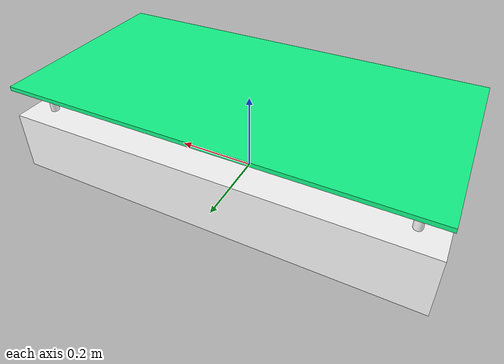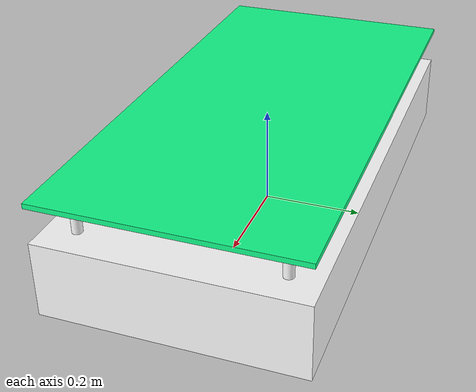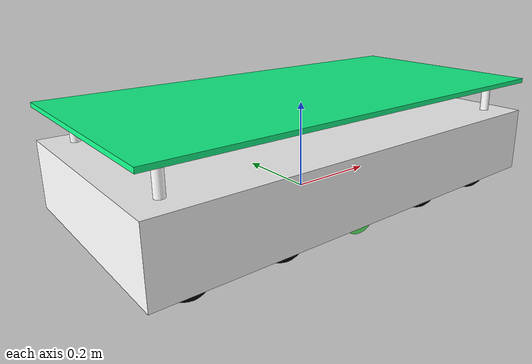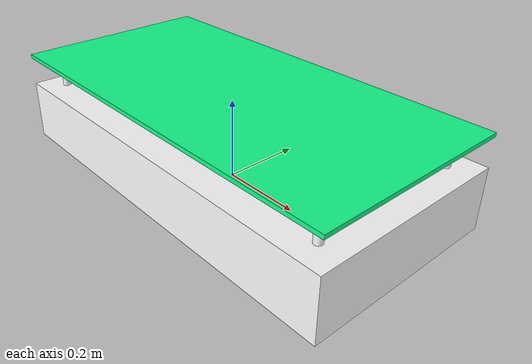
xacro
<?xml version="1.0"?>
<robot xmlns:xacro="http://www.ros.org/wiki/xacro">

    <xacro:include filename="inertia_macros.xacro" />

    <material name="white">
        <color rgba="1 1 1 1"/>
    </material>

    <material name="orange">
        <color rgba="1 0.3 0.1 1"/>
    </material>

    <material name="blue">
        <color rgba="0.2 0.2 1 1"/>
    </material>

    <material name="black">
        <color rgba="0 0 0 1"/>
    </material>

    <material name="red">
        <color rgba="0.990 0.396 0.455 1"/>
    </material>

    <material name="green">
        <color rgba="0.396 0.990 0.436 1"/>
    </material>

    <material name="sea">
        <color rgba="0.0693 0.990 0.545 1"/>
    </material>

    <!--base_link is the root link of the robot-->
    <link name="base_link">

    </link>

    <!--Foot print link-->
    <joint name="base_footprint_joint" type="fixed">
        <parent link="base_link"/>
        <child link="base_footprint"/>
        <origin xyz="0 0 0" rpy="0 0 0"/>
    </joint>

    <link name="base_footprint">
    </link>

    <joint name="chassis_joint" type="fixed">
        <origin xyz="-0.15 0 0" rpy="0 0 0"/>
        <parent link="base_link"/>
        <child link="chassis"/>
    </joint>

    <link name="chassis">
        <visual>
            <origin xyz="0.15 0 0.075" rpy="0 0 0"/>
            <geometry>
                <box size="1.0 0.5 0.15"/>
            </geometry>
            <material name="white"/>
        </visual>
        <collision>
            <origin xyz="0.15 0 0.075" rpy="0 0 0"/>
            <geometry>
                <box size="1.0 0.5 0.15"/>
            </geometry>
        </collision>
        <xacro:inertial_box mass="0.5" x="1.0" y="0.5" z="0.15">
            <origin xyz="0.15 0 0.075" rpy="0 0 0"/>
        </xacro:inertial_box>
    </link>

    <gazebo reference="chassis">
        <material>Gazebo/White</material>
    </gazebo>

        <!-- Define the table top -->
    <link name="table_top">
        <visual>
            <origin xyz="0.15 0 0.075" rpy="0 0 0"/>
            <geometry>
                <box size="1.0 0.5 0.01"/>
            </geometry>
            <material name="sea"/>
        </visual>
        <collision>
            <origin xyz="0 0 0.015" rpy="0 0 0"/>
            <geometry>
                <box size="0.15 0 0.075"/>
            </geometry>
        </collision>
    </link>

    <!-- Define the legs -->
    <xacro:macro name="leg" params="name x y">
        <link name="${name}">
            <visual>
                <origin xyz="${x} ${y} 0.075" rpy="0 0 0"/>
                <geometry>
                    <cylinder radius="0.01" length="0.15"/>
                </geometry>
                <material name="white"/>
            </visual>
            <collision>
                <origin xyz="${x} ${y} 0.075" rpy="0 0 0"/>
                <geometry>
                    <cylinder radius="0.01" length="0.15"/>
                </geometry>
            </collision>
        </link>
    </xacro:macro>

    <xacro:leg name="leg1" x="0.22" y="0.095"/>
    <xacro:leg name="leg2" x="0.22" y="-0.095"/>
    <xacro:leg name="leg3" x="-0.22" y="0.095"/>
    <xacro:leg name="leg4" x="-0.22" y="-0.095"/>

    <!-- Define joints for the legs -->
    <xacro:macro name="leg_joint" params="name parent child x y">
        <joint name="${name}" type="fixed">
            <origin xyz="${x} ${y} 0.075" rpy="0 0 0"/>
            <parent link="${parent}"/>
            <child link="${child}"/>
        </joint>
    </xacro:macro>

    <xacro:leg_joint name="leg1_joint" parent="base_link" child="leg1" x="0.22" y="0.095"/>
    <xacro:leg_joint name="leg2_joint" parent="base_link" child="leg2" x="0.22" y="-0.095"/>
    <xacro:leg_joint name="leg3_joint" parent="base_link" child="leg3" x="-0.22" y="0.095"/>
    <xacro:leg_joint name="leg4_joint" parent="base_link" child="leg4" x="-0.22" y="-0.095"/>

    <!-- Define joint for the table top -->
    <joint name="table_top_joint" type="fixed">
        <origin xyz="-0.15 0 0.15" rpy="0 0 0"/>
        <parent link="base_link"/>
        <child link="table_top"/>
    </joint>

    <gazebo reference="table_top">
        <material>Gazebo/Purple</material>
    </gazebo>

    <joint name="left_wheel_joint" type="continuous">
        <origin xyz="0 0.175 0" rpy="-${pi/2} 0 0"/>
        <parent link="base_link"/>
        <child link="left_wheel"/>
        <axis xyz="0 0 1"/>
    </joint>

    <link name="left_wheel">
        <visual>
            <origin xyz="0 0 0" rpy="0 0 0"/>
            <geometry>
                <cylinder radius="0.05" length="0.04"/>
            </geometry>
            <material name="red"/>
        </visual>
        <collision>
            <origin xyz="0 0 0" rpy="0 0 0"/>
            <geometry>
                <sphere radius="0.05"/>
            </geometry>
            <material name="red"/>
        </collision>
        <xacro:inertial_cylinder mass="0.2" length="0.04" radius="0.05">
            <origin xyz="0 0 0" rpy="0 0 0"/>
        </xacro:inertial_cylinder>
    </link>

    <gazebo reference="left_wheel">
        <material>Gazebo/Red</material>
    </gazebo>

    <joint name="right_wheel_joint" type="continuous">
        <origin xyz="0 -0.175 0" rpy="${pi/2} 0 0"/>
        <parent link="base_link"/>
        <child link="right_wheel"/>
        <axis xyz="0 0 -1"/>
    </joint>

    <link name="right_wheel">
        <visual>
            <origin xyz="0 0 0" rpy="0 0 0"/>
            <geometry>
                <cylinder radius="0.05" length="0.04"/>
            </geometry>
            <material name="green"/>
        </visual>
        <collision>
            <origin xyz="0 0 0" rpy="0 0 0"/>
            <geometry>
                <sphere radius="0.05"/>
            </geometry>
            <material name="green"/>
        </collision>
        <xacro:inertial_cylinder mass="0.2" length="0.04" radius="0.05">
            <origin xyz="0 0 0" rpy="0 0 0"/>
        </xacro:inertial_cylinder>
    </link>

    <gazebo reference="right_wheel">
        <material>Gazebo/Green</material>
    </gazebo>

    <xacro:macro name="caster_wheel" params="prefix parent_link x y z rpy color Gcolor">
        <joint name="${prefix}_caster_joint" type="fixed">
            <origin xyz="${x} ${y} ${z}" rpy="${rpy}"/>
            <parent link="${parent_link}"/>
            <child link="${prefix}_caster"/>
        </joint>

        <link name="${prefix}_caster">
            <visual>
            <geometry>
                <sphere radius="0.05"/>
            </geometry>
            <material name="black"/>
            </visual>
            <collision>
            <geometry>
                <sphere radius="0.05"/>
            </geometry>
            <material name="black"/>
            </collision>
            <xacro:inertial_sphere mass="0.1" radius="0.05">
            <origin xyz="0 0 0" rpy="0 0 0"/>
            </xacro:inertial_sphere>
        </link>

        <gazebo reference="${prefix}_caster">
            <material>Gazebo/Black</material>
            <mu1 value="0.0001"/>
            <mu2 value="0.0001"/>
        </gazebo>
        </xacro:macro>

        <!-- Left caster wheels -->
        <xacro:caster_wheel prefix="left_front" parent_link="base_link" x="0.4" y="0.175" z="0" rpy="0 0 0" Gcolor="Black" color="black"/>
        <xacro:caster_wheel prefix="left_middle1" parent_link="base_link" x="0.2" y="0.175" z="0" rpy="0 0 0" Gcolor="Black" color="black"/>
        <xacro:caster_wheel prefix="left_middle3" parent_link="base_link" x="-0.2" y="0.175" z="0" rpy="0 0 0" Gcolor="Black" color="black"/>
        <xacro:caster_wheel prefix="left_rear" parent_link="base_link" x="-0.4" y="0.175" z="0" rpy="0 0 0" Gcolor="Black" color="black"/>

        <!-- Right caster wheels -->
        <xacro:caster_wheel prefix="right_front" parent_link="base_link" x="0.4" y="-0.175" z="0" rpy="0 0 0" Gcolor="Black" color="black"/>
        <xacro:caster_wheel prefix="right_middle1" parent_link="base_link" x="0.2" y="-0.175" z="0" rpy="0 0 0" Gcolor="Black" color="black"/>
        <xacro:caster_wheel prefix="right_middle3" parent_link="base_link" x="-0.2" y="-0.175" z="0" rpy="0 0 0" Gcolor="Black" color="black"/>
        <xacro:caster_wheel prefix="right_rear" parent_link="base_link" x="-0.4" y="-0.175" z="0" rpy="0 0 0" Gcolor="Black" color="black"/>

</robot>
